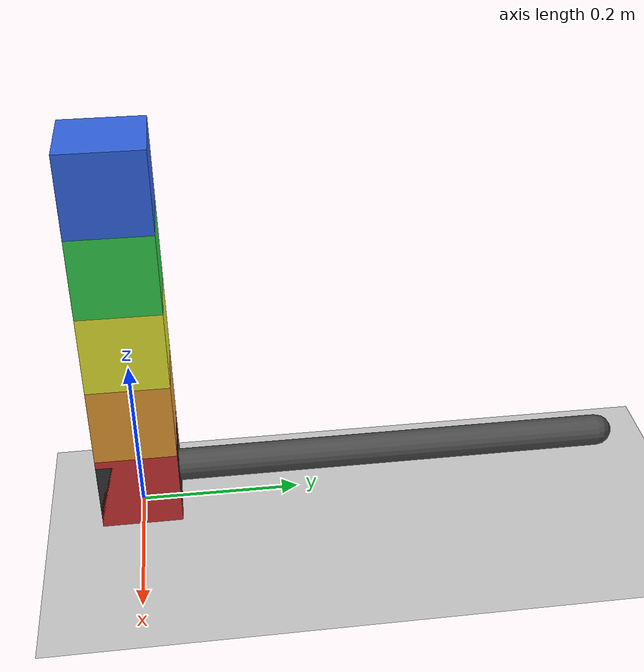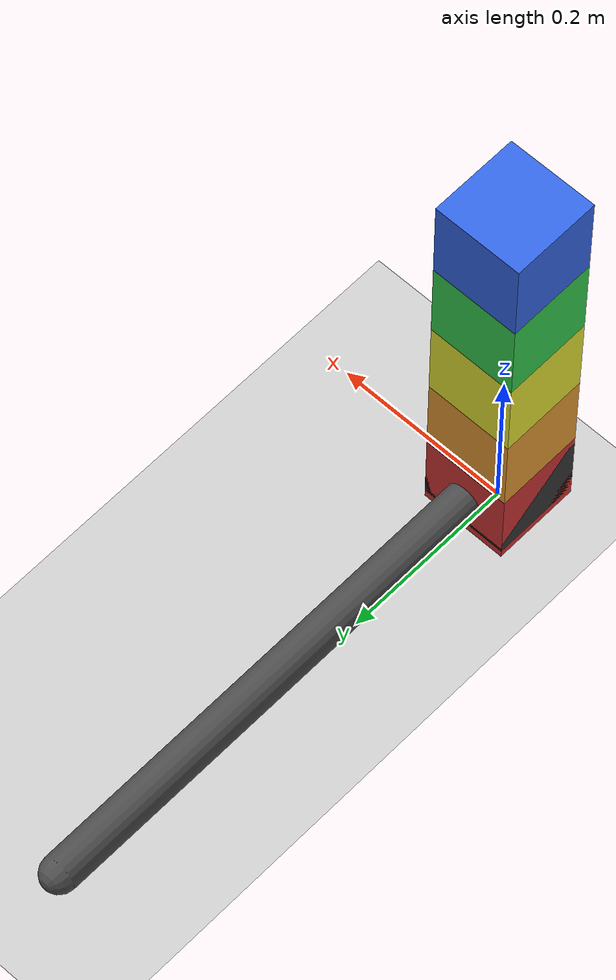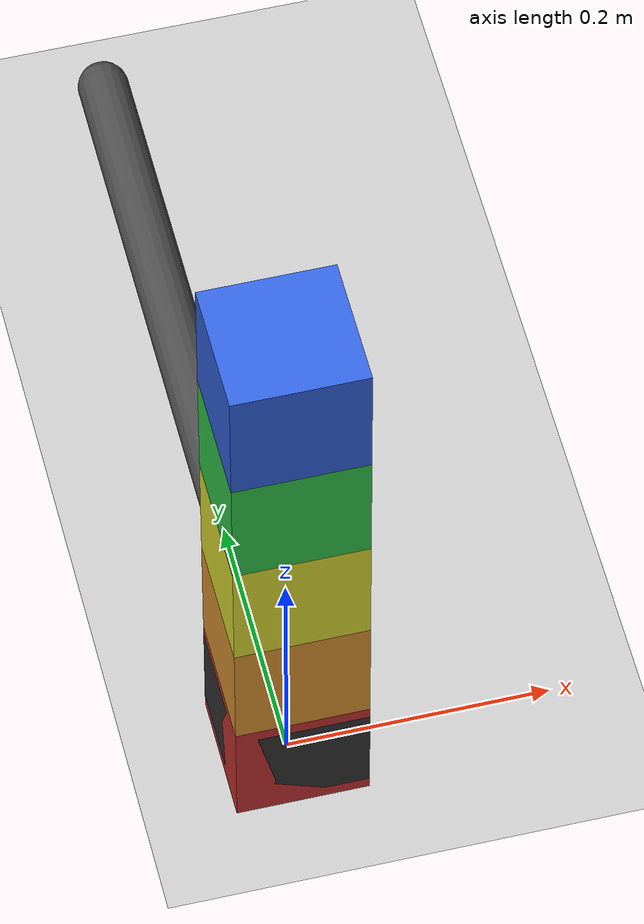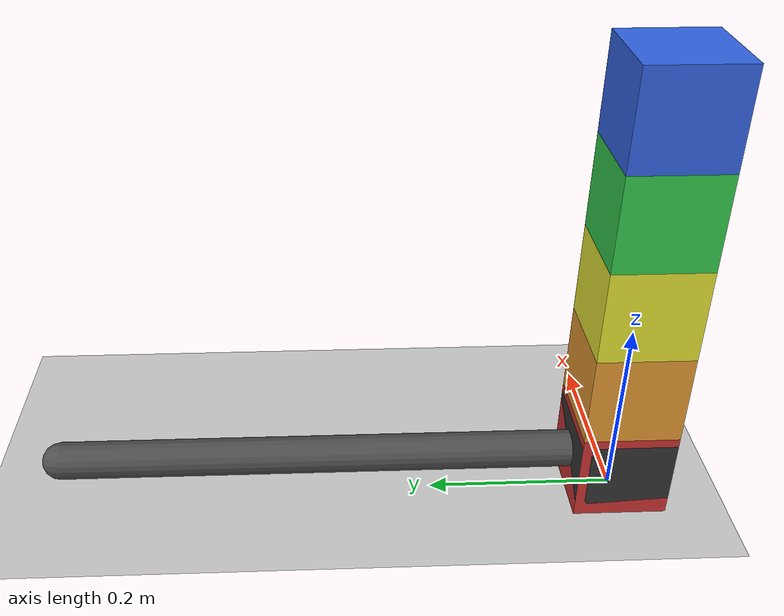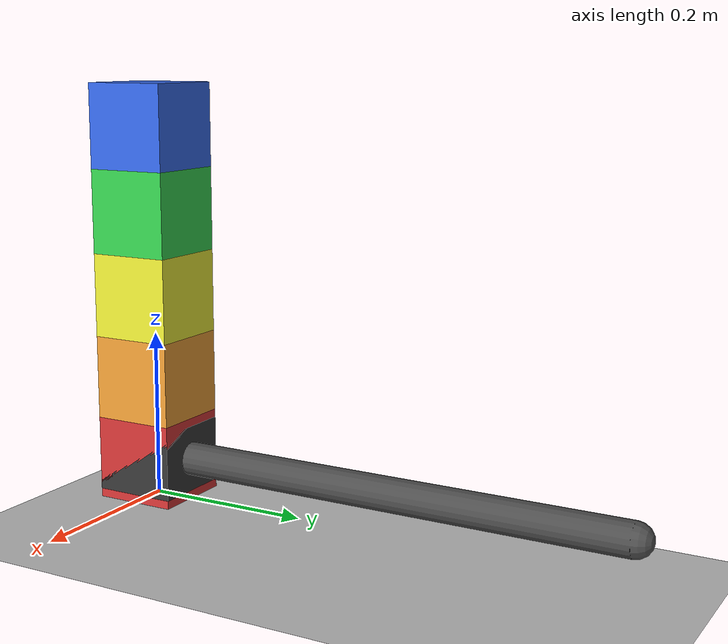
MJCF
<mujoco model="five_block_stack_topple">
  <option timestep="0.002" gravity="0 0 -9.81" integrator="implicitfast"/>

  <worldbody>
    <light name="sun" pos="0 0 3" dir="0 0 -1" diffuse="0.8 0.8 0.8"/>
    <geom name="floor" type="plane" size="3 3 0.1" pos="0 0 0" friction="0.8 0.005 0.0001" rgba="0.8 0.8 0.8 1"/>

    <body name="block1" pos="0 0 0.05">
      <freejoint name="block1_free"/>
      <geom name="block1_geom" type="box" size="0.05 0.05 0.05" mass="0.5" friction="0.8 0.005 0.0001" rgba="0.8 0.2 0.2 1"/>
    </body>
    <body name="block2" pos="0 0 0.15">
      <freejoint name="block2_free"/>
      <geom name="block2_geom" type="box" size="0.05 0.05 0.05" mass="0.5" friction="0.8 0.005 0.0001" rgba="0.9 0.6 0.2 1"/>
    </body>
    <body name="block3" pos="0 0 0.25">
      <freejoint name="block3_free"/>
      <geom name="block3_geom" type="box" size="0.05 0.05 0.05" mass="0.5" friction="0.8 0.005 0.0001" rgba="0.9 0.9 0.2 1"/>
    </body>
    <body name="block4" pos="0 0 0.35">
      <freejoint name="block4_free"/>
      <geom name="block4_geom" type="box" size="0.05 0.05 0.05" mass="0.5" friction="0.8 0.005 0.0001" rgba="0.2 0.8 0.3 1"/>
    </body>
    <body name="block5" pos="0 0 0.45">
      <freejoint name="block5_free"/>
      <geom name="block5_geom" type="box" size="0.05 0.05 0.05" mass="0.5" friction="0.8 0.005 0.0001" rgba="0.2 0.4 0.9 1"/>
    </body>

    <body name="sweeper" pos="0 0.6 0.05">
      <joint name="sweep" type="hinge" axis="0 0 1" limited="true" range="-1.45 0.9" damping="0"/>
      <geom name="sweeper_arm" type="capsule" fromto="0 0 0 0 -0.55 0" size="0.02" mass="0.5" rgba="0.3 0.3 0.3 1"/>
      <geom name="sweeper_head" type="box" pos="0 -0.6 0" size="0.05 0.05 0.04" mass="2" friction="0.8 0.005 0.0001" rgba="0.2 0.2 0.2 1"/>
    </body>
  </worldbody>

  <actuator>
    <velocity name="sweep_motor" joint="sweep" kv="200" ctrllimited="true" ctrlrange="-5 5" forcelimited="true" forcerange="-80 80"/>
  </actuator>

  <keyframe>
    <key name="start" qpos="0 0 0.05 1 0 0 0  0 0 0.15 1 0 0 0  0 0 0.25 1 0 0 0  0 0 0.35 1 0 0 0  0 0 0.45 1 0 0 0  -1.4" qvel="0 0 0 0 0 0  0 0 0 0 0 0  0 0 0 0 0 0  0 0 0 0 0 0  0 0 0 0 0 0  2.5" ctrl="2.5"/>
  </keyframe>
</mujoco>
